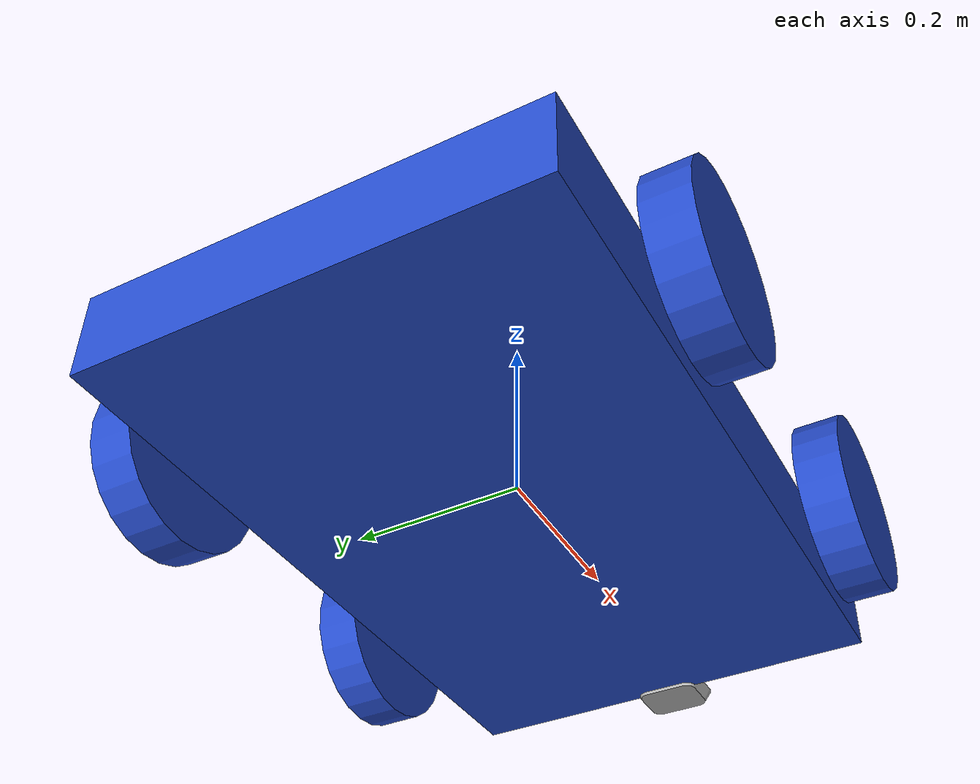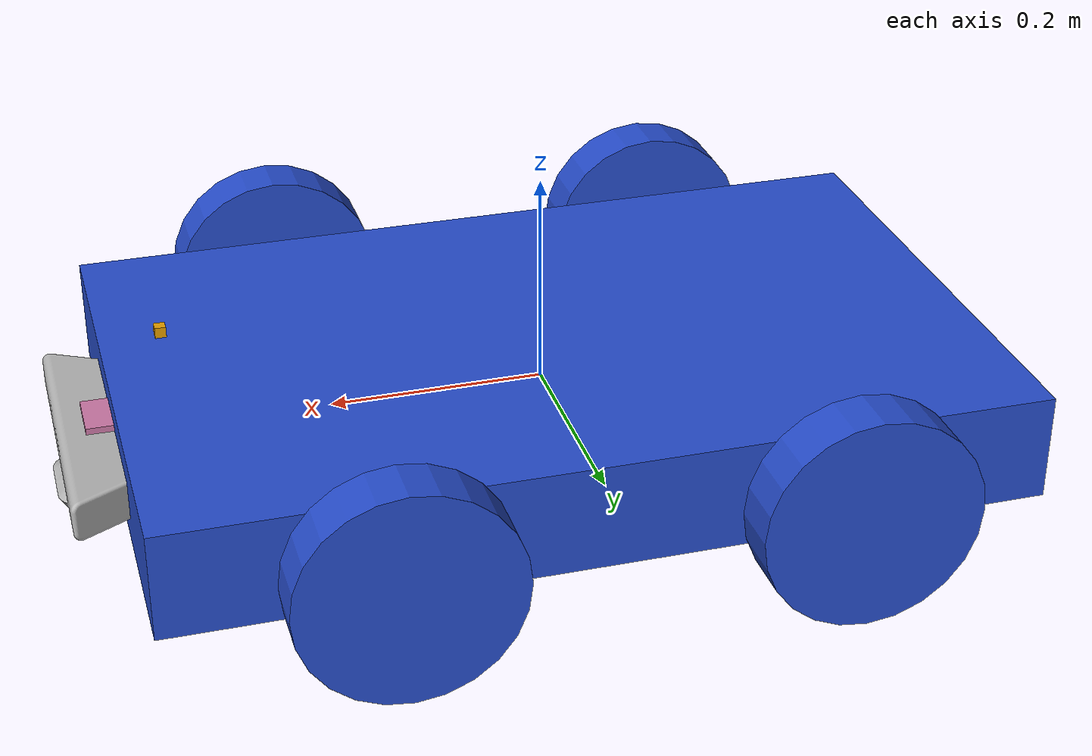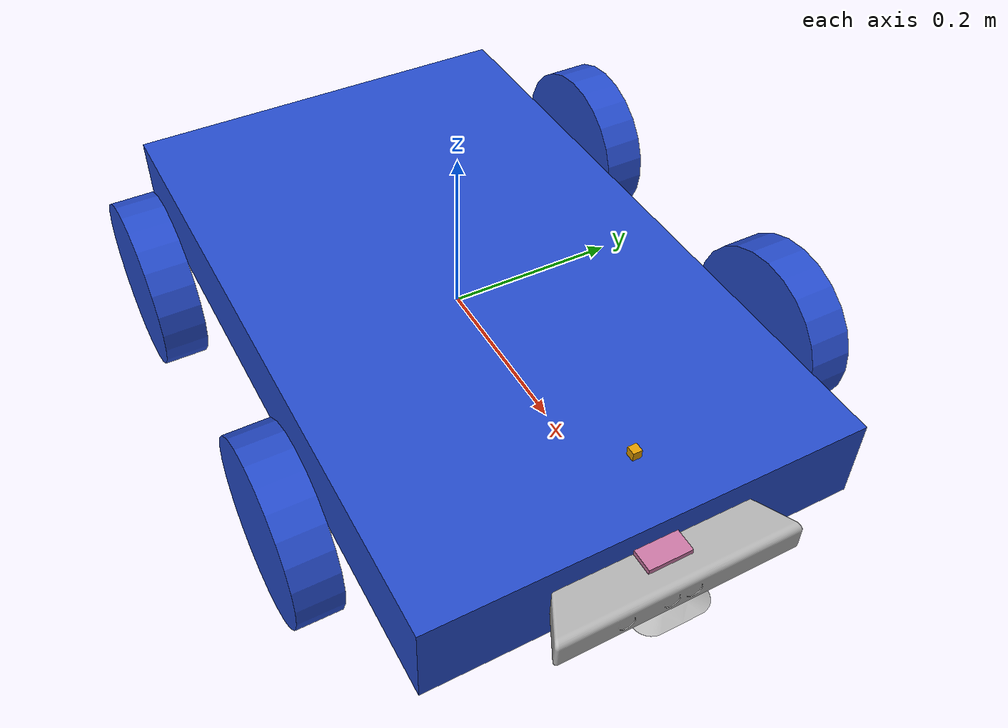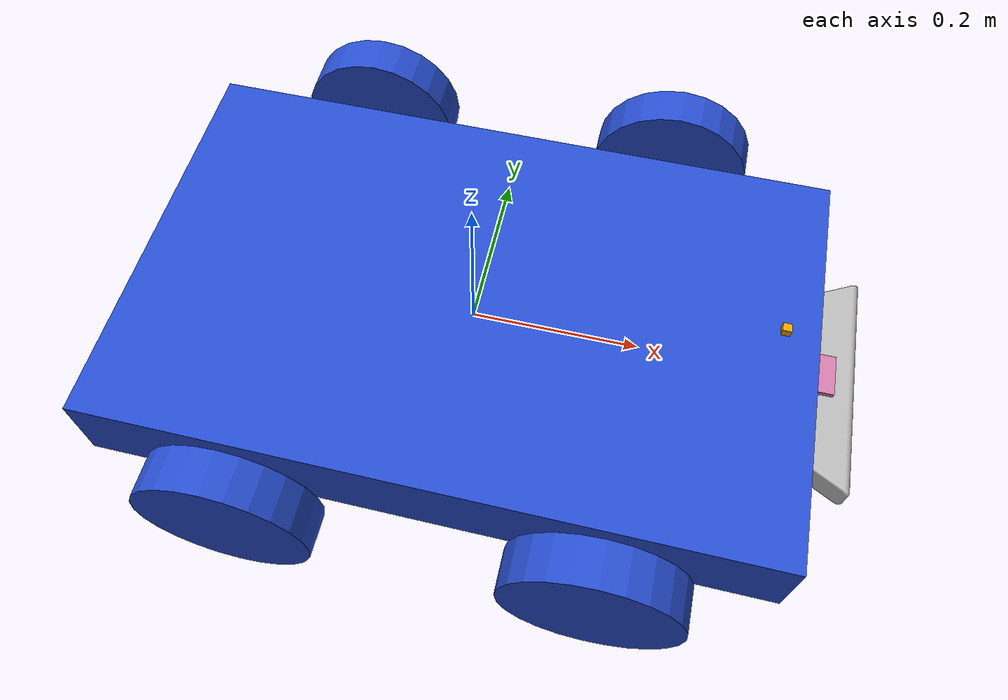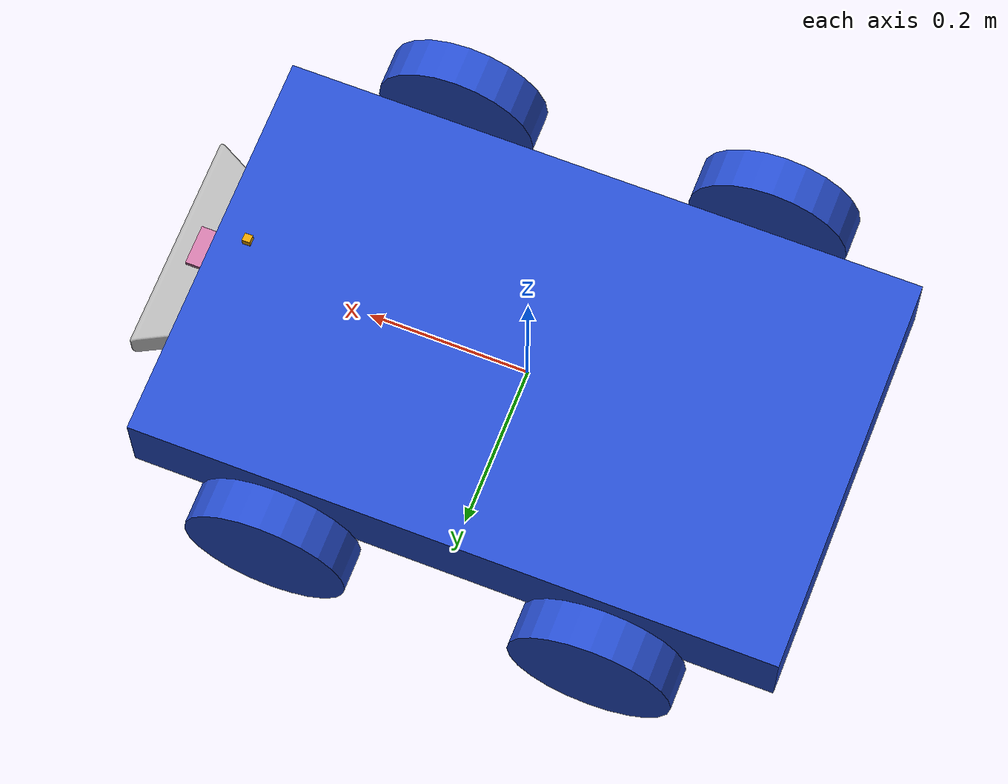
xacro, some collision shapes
<?xml version="1.0"?>
<robot name="my_robot" xmlns:xacro="http://www.ros.org/wiki/xacro">
	<include filename="$(find robot)/urdf/my_robot.gazebo" />
	<!-- Footprint -->
	<link name="robot_footprint">
	</link>
	<joint name="robot_footprint_joint" type="fixed">
		<origin xyz="0 0 0" rpy="0 0 0" />
		<parent link="robot_footprint" />
		<child link="chassis" />
	</joint>
	<!-- Chassis -->
	<link name="chassis">
		<pose>
			0 0 0.1 0 0 0
		</pose>
		<inertial>
			<mass value="15.0" />
			<origin xyz="0.0 0 0" rpy=" 0 0 0" />
			<inertia ixx="0.1" ixy="0" ixz="0" iyy="0.1" iyz="0" izz="0.1" />
		</inertial>
		<collision name="collision">
			<origin xyz="0 0 0" rpy=" 0 0 0" />
			<geometry>
				<box size=".8 .5 .1" />
			</geometry>
		</collision>
		<visual name="chassis_visual">
			<origin xyz="0 0 0" rpy=" 0 0 0" />
			<geometry>
				<box size=".8 .5 .1" />
			</geometry>
		</visual>
	</link>
	<gazebo reference="chassis">
		<material>
			Gazebo/Blue
		</material>
	</gazebo>
	<!-- Right Front Wheel -->
	<link name="front_right_wheel">
		<visual>
			<origin xyz="0 0 0" rpy=" 0 1.5707 1.5707" />
			<geometry>
				<cylinder radius="0.1" length="0.05" />
			</geometry>
		</visual>
		<collision>
			<origin xyz="0 0 0" rpy=" 0 1.5707 1.5707" />
			<geometry>
				<cylinder radius="0.1" length="0.05" />
			</geometry>
		</collision>
		<inertial>
			<mass value="5.0" />
			<origin xyz="0 0 0" rpy=" 0 1.5707 1.5707" />
			<inertia ixx="0.1" ixy="0" ixz="0" iyy="0.1" iyz="0" izz="0.1" />
		</inertial>
	</link>
	<joint type="continuous" name="front_right_wheel_hinge">
		<origin xyz="0.2 -0.3 0" rpy="0 0 0" />
		<child link="front_right_wheel" />
		<parent link="chassis" />
		<axis xyz="0 1 0" rpy="0 0 0" />
		<limit effort="10000" velocity="1000" />
		<dynamics damping="1.0" friction="1.0" />
	</joint>
	<gazebo reference="front_right_wheel">
		<material>
			Gazebo/Blue
		</material>
	</gazebo>
	<!-- Left Front Wheel -->
	<link name="front_left_wheel">
		<visual>
			<origin xyz="0 0 0" rpy=" 0 1.5707 1.5707" />
			<geometry>
				<cylinder radius="0.1" length="0.05" />
			</geometry>
		</visual>
		<collision>
			<origin xyz="0 0 0" rpy=" 0 1.5707 1.5707" />
			<geometry>
				<cylinder radius="0.1" length="0.05" />
			</geometry>
		</collision>
		<inertial>
			<mass value="5.0" />
			<origin xyz="0 0 0" rpy=" 0 1.5707 1.5707" />
			<inertia ixx="0.1" ixy="0" ixz="0" iyy="0.1" iyz="0" izz="0.1" />
		</inertial>
	</link>
	<joint type="continuous" name="front_left_wheel_hinge">
		<origin xyz="0.2 0.3 0" rpy="0 0 0" />
		<child link="front_left_wheel" />
		<parent link="chassis" />
		<axis xyz="0 1 0" rpy="0 0 0" />
		<limit effort="10000" velocity="1000" />
		<dynamics damping="1.0" friction="1.0" />
	</joint>
	<gazebo reference="front_left_wheel">
		<material>
			Gazebo/Blue
		</material>
	</gazebo>
	<!-- Back Left Wheel -->
	<link name="back_left_wheel">
		<visual>
			<origin xyz="-0 0 0" rpy=" 0 1.5707 1.5707" />
			<geometry>
				<cylinder radius="0.1" length="0.05" />
			</geometry>
		</visual>
		<collision>
			<origin xyz="-0 0 0" rpy=" 0 1.5707 1.5707" />
			<geometry>
				<cylinder radius="0.1" length="0.05" />
			</geometry>
		</collision>
		<inertial>
			<mass value="5.0" />
			<origin xyz="-0 0 0" rpy=" 0 1.5707 1.5707" />
			<inertia ixx="0.1" ixy="0" ixz="0" iyy="0.1" iyz="0" izz="0.1" />
		</inertial>
	</link>
	<joint type="continuous" name="back_left_wheel_hinge">
		<origin xyz="-0.2 0.3 0" rpy="0 0 0" />
		<child link="back_left_wheel" />
		<parent link="chassis" />
		<axis xyz="0 1 0" rpy="0 0 0" />
		<limit effort="10000" velocity="1000" />
		<dynamics damping="1.0" friction="1.0" />
	</joint>
	<gazebo reference="back_left_wheel">
		<material>
			Gazebo/Blue
		</material>
	</gazebo>
	<!-- Back Right Wheel -->
	<link name="back_right_wheel">
		<visual>
			<origin xyz="-0 0 0" rpy=" 0 1.5707 1.5707" />
			<geometry>
				<cylinder radius="0.1" length="0.05" />
			</geometry>
		</visual>
		<collision>
			<origin xyz="-0 0 0" rpy=" 0 1.5707 1.5707" />
			<geometry>
				<cylinder radius="0.1" length="0.05" />
			</geometry>
		</collision>
		<inertial>
			<mass value="5.0" />
			<origin xyz="-0 0 0" rpy=" 0 1.5707 1.5707" />
			<inertia ixx="0.1" ixy="0" ixz="0" iyy="0.1" iyz="0" izz="0.1" />
		</inertial>
	</link>
	<joint type="continuous" name="back_right_wheel_hinge">
		<origin xyz="-0.2 -0.3 0" rpy="0 0 0" />
		<child link="back_right_wheel" />
		<parent link="chassis" />
		<axis xyz="0 1 0" rpy="0 0 0" />
		<limit effort="10000" velocity="1000" />
		<dynamics damping="1.0" friction="1.0" />
	</joint>
	<gazebo reference="back_right_wheel">
		<material>
			Gazebo/Blue
		</material>
	</gazebo>
	<!-- Camera -->
	<link name="camera">
		<visual>
			<origin xyz="-0.0 0 0.0" rpy=" 0 0 0" />
			<geometry>
				<box size="0.05 0.05 0.05" />
			</geometry>
		</visual>
		<collision>
			<origin xyz="-0.0 0 0" rpy=" 0 0 0" />
			<geometry>
				<box size="0.05 0.05 0.05" />
			</geometry>
		</collision>
		<inertial>
			<mass value="0.1" />
			<origin xyz="0.0 0 0" rpy=" 0 0 0" />
			<inertia ixx="1e-6" ixy="0" ixz="0" iyy="1e-6" iyz="0" izz="1e-6" />
		</inertial>
	</link>
	<joint type="fixed" name="camera_joint">
		<origin xyz="0.4 0 0.0" rpy="0 0 0" />
		<child link="camera" />
		<parent link="chassis" />
	</joint>
	<!-- RGBD Camera -->
	<link name="RGBD_camera">
		<visual>
			<origin xyz="-0.0 0 0.05" rpy="0 -1.5707 1.5707" />
			<geometry>
				<mesh filename="package://robot/meshes/kinect.dae" />
			</geometry>
		</visual>
		<collision>
			<origin xyz="-0.0 0 0" rpy=" 0 0 0" />
			<geometry>
				<box size="0.05 0.05 0.05" />
			</geometry>
		</collision>
		<inertial>
			<mass value="0.1" />
			<origin xyz="0.0 0 0" rpy=" 0 0 0" />
			<inertia ixx="1e-6" ixy="0" ixz="0" iyy="1e-6" iyz="0" izz="1e-6" />
		</inertial>
	</link>
	<joint type="fixed" name="RGBD_camera_joint">
		<origin xyz="0.0 0 0.0" rpy="-1.5707 0 -1.5707" />
		<child link="RGBD_camera" />
		<parent link="camera" />
	</joint>
	<!-- LIDAR -->
	<link name="hokuyo">
		<visual>
			<origin xyz="-0.0 0 0" rpy=" 0 0 0" />
			<geometry>
				<mesh filename="package://robot/meshes/hokuyo.dae" />
			</geometry>
		</visual>
		<collision>
			<origin xyz="-0.0 0 0" rpy=" 0 0 0" />
			<geometry>
				<box size="0.01 0.01 0.01" />
			</geometry>
		</collision>
		<inertial>
			<mass value="1e-5" />
			<origin xyz="0.0 0 0" rpy=" 0 0 0" />
			<inertia ixx="1e-6" ixy="0" ixz="0" iyy="1e-6" iyz="0" izz="1e-6" />
		</inertial>
	</link>
	<joint type="fixed" name="hokuyo">
		<origin xyz="0.35 0 0.1" rpy="0 0 0" />
		<child link="hokuyo" />
		<parent link="chassis" />
		<axis xyz="0 1 0" rpy="0 0 0" />
	</joint>
</robot>
